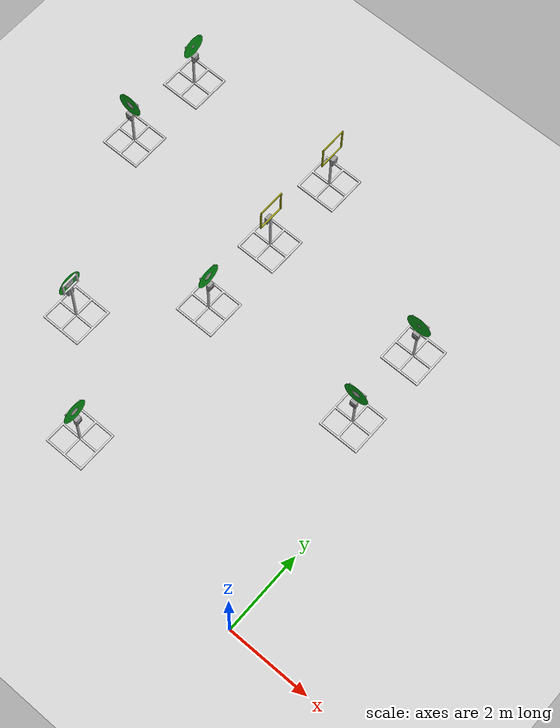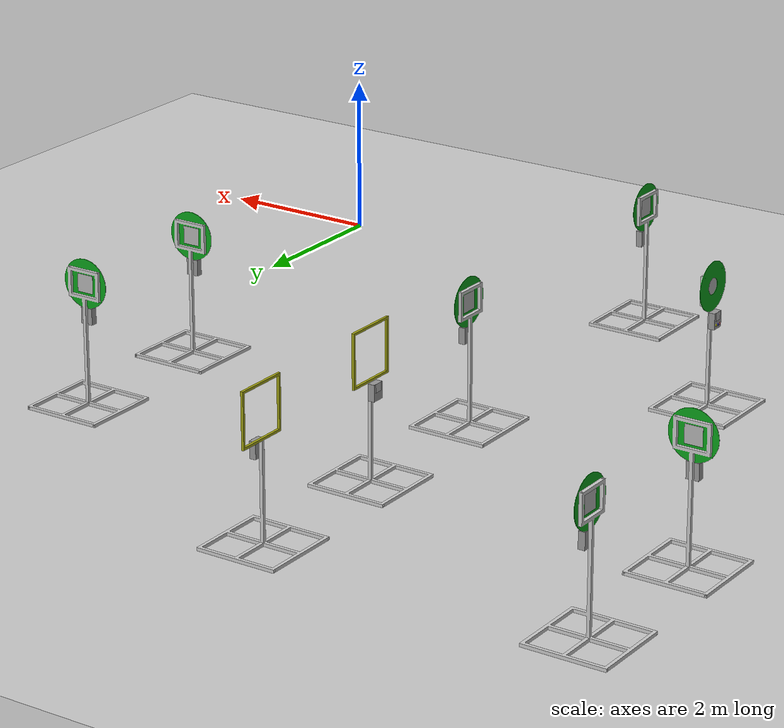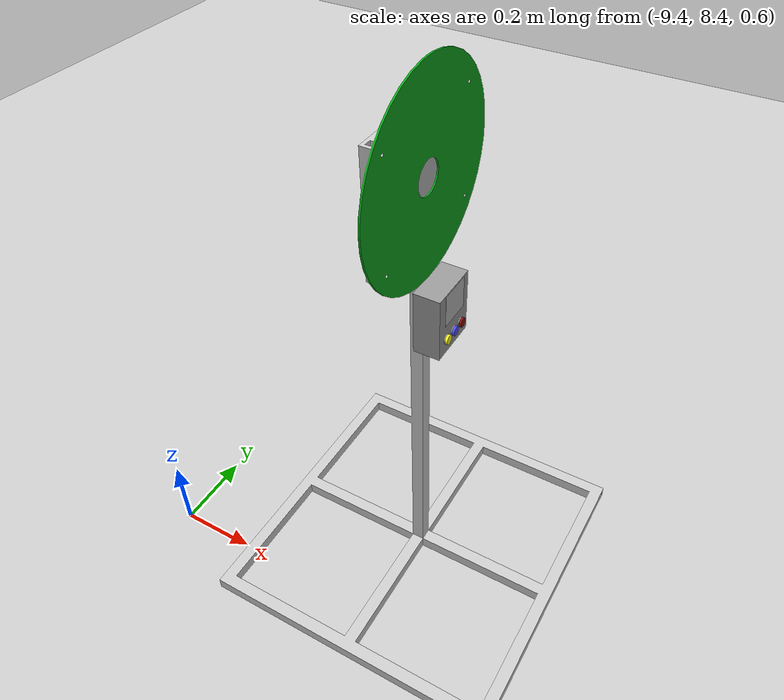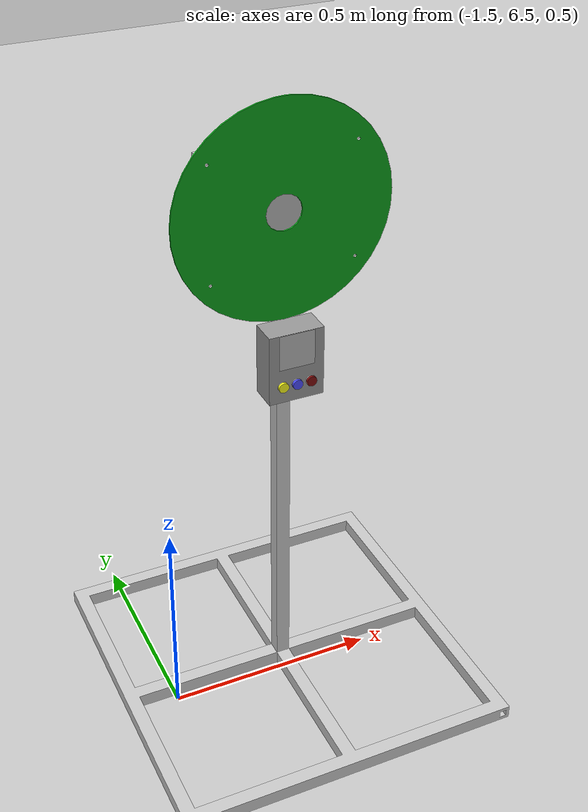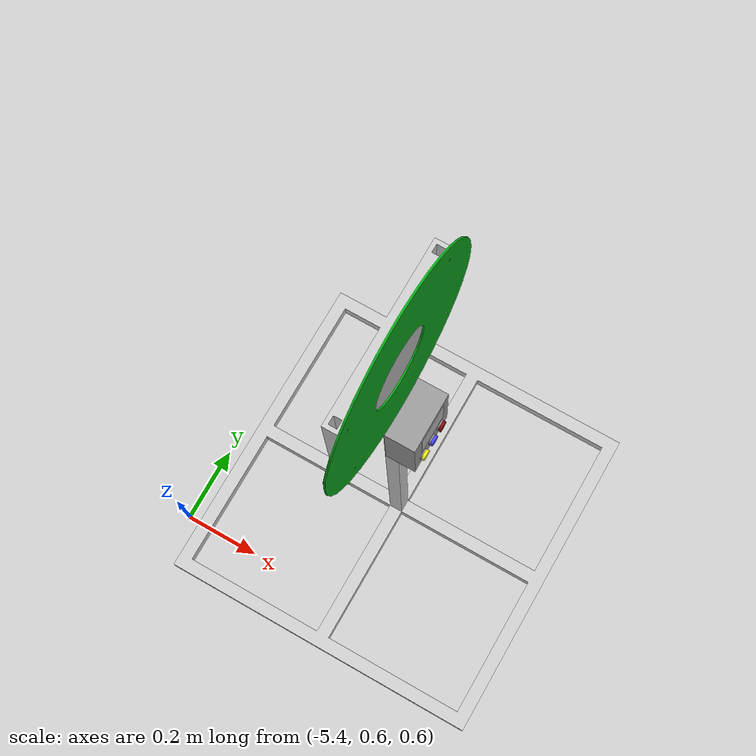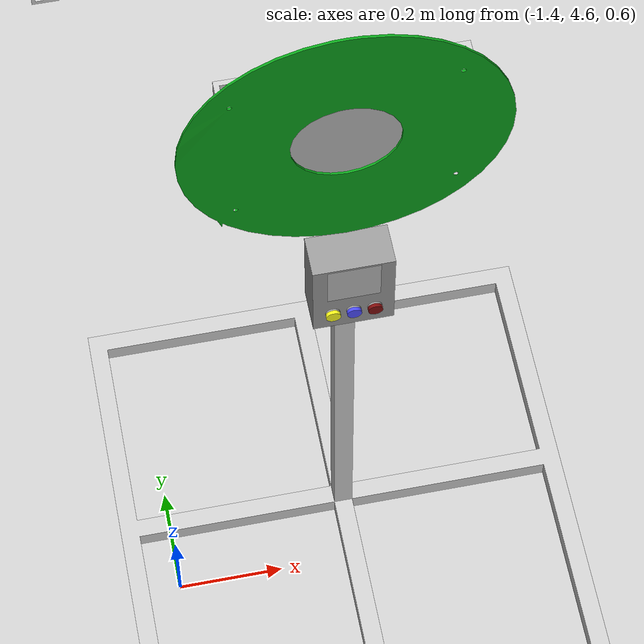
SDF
<?xml version="1.0"?>
<sdf version="1.5">
  <world name="default">
    <!-- A set of spotlights -->
    <light type="directional" name="spotlight_1">
      <pose>0 0 1000 0 0 0</pose>
      <cast_shadows>true</cast_shadows>
      <diffuse>0.65 0.65 0.65 1</diffuse>
      <specular>0.01 0.01 0.01 1</specular>
      <attenuation>
        <range>1000</range>
        <constant>0.9</constant>
        <linear>0.01</linear>
        <quadratic>0.001</quadratic>
      </attenuation>
      <direction>1 1 -0.4</direction>
    </light>
    <light type="directional" name="spotlight_2">
      <pose>0 0 1000 0 0 0</pose>
      <cast_shadows>true</cast_shadows>
      <diffuse>0.65 0.65 0.65 1</diffuse>
      <specular>0.01 0.01 0.01 1</specular>
      <attenuation>
        <range>1000</range>
        <constant>0.9</constant>
        <linear>0.01</linear>
        <quadratic>0.001</quadratic>
      </attenuation>
      <direction>-1 1 -0.4</direction>
    </light>
    <light type="directional" name="spotlight_3">
      <pose>0 0 1000 0 0 0</pose>
      <cast_shadows>true</cast_shadows>
      <diffuse>0.65 0.65 0.65 1</diffuse>
      <specular>0.01 0.01 0.01 1</specular>
      <attenuation>
        <range>1000</range>
        <constant>0.9</constant>
        <linear>0.01</linear>
        <quadratic>0.001</quadratic>
      </attenuation>
      <direction>1 -1 -0.4</direction>
    </light>
    <light type="directional" name="spotlight_4">
      <pose>0 0 1000 0 0 0</pose>
      <cast_shadows>true</cast_shadows>
      <diffuse>0.65 0.65 0.65 1</diffuse>
      <specular>0.01 0.01 0.01 1</specular>
      <attenuation>
        <range>1000</range>
        <constant>0.9</constant>
        <linear>0.01</linear>
        <quadratic>0.001</quadratic>
      </attenuation>
      <direction>-1 -1 -0.4</direction>
    </light>

    <gui>
      <camera name="user_camera">
        <pose>-8.89 -14.33 12.97 0.0 0.58 0.84</pose>
        <track_visual>
          <static>true</static>
          <use_model_frame>true</use_model_frame>
          <xyz>-3 0 1</xyz>
          <inherit_yaw>true</inherit_yaw>
        </track_visual>
      </camera>
    </gui>

    <spherical_coordinates>
      <latitude_deg>2.970668</latitude_deg>
      <longitude_deg>101.737593</longitude_deg>
    </spherical_coordinates>

    <physics type="ode">
      <real_time_update_rate>1000</real_time_update_rate>
      <max_step_size>0.001</max_step_size>
      <real_time_factor>1.0</real_time_factor>
      <max_contacts>20</max_contacts>
      <gravity>0 0 -9.81</gravity>
      <magnetic_field>0.1062e-6 20.8038e-6 -43.2881e-6</magnetic_field>
      <ode>
        <solver>
          <type>world</type>
          <min_step_size>0.0001</min_step_size>
          <iters>50</iters>
          <precon_iters>0</precon_iters>
          <sor>1.4</sor>
          <use_dynamic_moi_rescaling>1</use_dynamic_moi_rescaling>
        </solver>
        <constraints>
          <cfm>0</cfm>
          <erp>0.2</erp>
          <contact_max_correcting_vel>100.0</contact_max_correcting_vel>
          <contact_surface_layer>0.001</contact_surface_layer>
        </constraints>
      </ode>
    </physics>

    <atmosphere type="adiabatic">
      <temperature>298.15</temperature>
      <pressure>101325</pressure>
      <temperature_gradient>-0.0065</temperature_gradient>
    </atmosphere>

    <plugin name="fwman" filename="libsphinx_fwman.so">
      <spawn_point name="default">
        <pose>0 0 0.2 0 0 0</pose>
      </spawn_point>
      <spawn_point name="5_meters_forward">
        <pose>5 0 0.2 0 0 0</pose>
      </spawn_point>
    </plugin>

    <include>
      <uri>model://ground_plane</uri>
    </include>

    <!-- OBSTACLES -->
    <model name="1_big">
      <include>
        <uri>model://tc6_big_target_0</uri>
        <pose>-5 1 0 0 0 0</pose>
      </include>
    </model>

    <model name="2_big">
      <include>
        <uri>model://tc6_big_target_1</uri>
        <pose>-7 3 0 0 0 3.14</pose>
      </include>
    </model>

    <model name="3_big">
      <include>
        <uri>model://tc6_big_target_2</uri>
        <pose>-1 5 0 0 0 -1.57</pose>
      </include>
    </model>

    <model name="4_big">
      <include>
        <uri>model://tc6_big_target_3</uri>
        <pose>-5 5 0 0 0 0</pose>
      </include>
    </model>

    <model name="5_big">
      <include>
        <uri>model://tc6_big_target_0</uri>
        <pose>-9 7 0 0 0 -1.57</pose>
      </include>
    </model>

    <model name="6_ring">
      <include>
        <uri>model://tc6_ring_3</uri>
        <pose>-5 7 0 0 0 3.14</pose>
      </include>
    </model>

    <model name="7_small">
      <include>
        <uri>model://tc6_small_target_2</uri>
        <pose>-1 7 0 0 0 -1.57</pose>
      </include>
    </model>

    <model name="8_ring">
      <include>
        <uri>model://tc6_ring_3</uri>
        <pose>-5 9 0 0 0 0</pose>
      </include>
    </model>

    <model name="9_small">
      <include>
        <uri>model://tc6_small_target_2</uri>
        <pose>-9 9 0 0 0 0</pose>
      </include>
    </model>

  </world>
</sdf>

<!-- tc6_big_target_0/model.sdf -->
<sdf version="1.5">
  <model name='tc6_big_target_0'>

  <include>
    <uri>model://tc6_big_target</uri>
    <pose>0 0 0 0 0 0</pose>
  </include>

  <include>
    <uri>model://tc6_sensor_box</uri>
    <pose>0.1 0 1.0 0 0 0</pose>
  </include>

  <include>
    <uri>model://apriltag_0</uri>
    <pose>0.105 0 1.1 0 0 0</pose>
  </include>

  <include>
    <uri>model://tc6_sensor</uri>
    <pose>0.02 0 1.5 0 0 0</pose>
  </include>

  <joint name="box_joint" type="fixed">
      <child>tc6_sensor_box::box</child>
      <parent>tc6_big_target::tc6_big_target</parent>
  </joint>

  <joint name="tag_joint" type="fixed">
      <child>apriltag_0::link</child>
      <parent>tc6_sensor_box::box</parent>
  </joint>

  <joint name="sensor_joint" type="fixed">
      <child>tc6_sensor::link_pcb_copper</child>
      <parent>tc6_big_target::tc6_big_target</parent>
  </joint>

  </model>
</sdf>

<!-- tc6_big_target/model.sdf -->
<sdf version="1.5">
  <model name='tc6_big_target'>
    <link name='tc6_big_target'>
      <pose>0 0 0 1.5708 0 0</pose>
      <inertial>
        <mass>11.287</mass>
        <inertia>
          <ixx>5.72909</ixx>
          <ixy>-1.72778e-18</ixy>
          <ixz>0.0282177</ixz>
          <iyy>5.65454</iyy>
          <iyz>-2.45135e-16</iyz>
          <izz>1.65105</izz>
        </inertia>
      </inertial>
      <collision name='tc6_big_target_collision'>
        <geometry>
          <mesh>
            <scale>1 1 1</scale>
            <uri>model://tc6_big_target/meshes/tc6_big_target.dae</uri>
          </mesh>
        </geometry>
      </collision>
      <visual name='tc6_big_target_visual'>
        <geometry>
          <mesh>
            <scale>1 1 1</scale>
            <uri>model://tc6_big_target/meshes/tc6_big_target.dae</uri>
          </mesh>
        </geometry>
      </visual>
    </link>
  </model>
</sdf>

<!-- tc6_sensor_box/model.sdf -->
<sdf version='1.5'>
  <model name='tc6_sensor_box'>
    <static>true</static>
    <link name='box'>
      <pose>-0.037286 0 0.1 0 -0 0</pose>
      <visual name='visual'>
        <geometry>
          <box>
            <size>0.08 0.155 0.2</size>
          </box>
        </geometry>
        <material>
          <lighting>1</lighting>
          <script>
            <uri>file://media/materials/scripts/gazebo.material</uri>
            <name>Gazebo/Grey</name>
          </script>
          <shader type='vertex'>
            <normal_map>__default__</normal_map>
          </shader>
          <ambient>0.194 0.187 0.169 1</ambient>
          <diffuse>0.7 0.7 0.7 1</diffuse>
          <specular>0.01 0.01 0.01 1</specular>
          <emissive>0 0 0 1</emissive>
        </material>
        <transparency>0</transparency>
        <cast_shadows>1</cast_shadows>
      </visual>
      <collision name='collision'>
        <geometry>
          <box>
            <size>0.08 0.155 0.2</size>
          </box>
        </geometry>
      </collision>
    </link>
    <link name='pilot_lamp_blue'>
      <pose>0.009714 0 0.05 -3.14159 1.57 -3.14159</pose>
      <visual name='visual'>
        <geometry>
          <cylinder>
            <radius>0.014</radius>
            <length>0.007</length>
          </cylinder>
        </geometry>
        <material>
          <lighting>1</lighting>
          <script>
            <uri>file://media/materials/scripts/gazebo.material</uri>
            <name>Gazebo/Grey</name>
          </script>
          <shader type='vertex'>
            <normal_map>__default__</normal_map>
          </shader>
          <ambient>0 0 1 1</ambient>
          <diffuse>0.3 0.3 1 1</diffuse>
          <specular>0.01 0.01 0.01 1</specular>
          <emissive>0 0 0 1</emissive>
        </material>
        <transparency>0</transparency>
        <cast_shadows>1</cast_shadows>
      </visual>
      <collision name='collision'>
        <geometry>
          <cylinder>
            <radius>0.014</radius>
            <length>0.007</length>
          </cylinder>
        </geometry>
      </collision>
    </link>
    <link name='pilot_lamp_base_0'>
      <pose>0.002714 -0.04 0.05 -3.14159 1.57 -3.14159</pose>
      <visual name='visual'>
        <geometry>
          <cylinder>
            <radius>0.014</radius>
            <length>0.007</length>
          </cylinder>
        </geometry>
        <material>
          <lighting>1</lighting>
          <script>
            <uri>file://media/materials/scripts/gazebo.material</uri>
            <name>Gazebo/Grey</name>
          </script>
          <shader type='vertex'>
            <normal_map>__default__</normal_map>
          </shader>
          <ambient>0 0 0 1</ambient>
          <diffuse>0 0 0 1</diffuse>
          <specular>0 0 0 1</specular>
          <emissive>0 0 0 1</emissive>
        </material>
        <transparency>0</transparency>
        <cast_shadows>1</cast_shadows>
      </visual>
      <collision name='collision'>
        <geometry>
          <cylinder>
            <radius>0.014</radius>
            <length>0.007</length>
          </cylinder>
        </geometry>
      </collision>
    </link>
    <link name='pilot_lamp_yellow'>
      <pose>0.009714 -0.04 0.05 -3.14159 1.57 -3.14159</pose>
      <visual name='visual'>
        <geometry>
          <cylinder>
            <radius>0.014</radius>
            <length>0.007</length>
          </cylinder>
        </geometry>
        <material>
          <lighting>1</lighting>
          <script>
            <uri>file://media/materials/scripts/gazebo.material</uri>
            <name>Gazebo/Grey</name>
          </script>
          <shader type='vertex'>
            <normal_map>__default__</normal_map>
          </shader>
          <ambient>1 1 0.1 1</ambient>
          <diffuse>0.7 0.7 0.7 1</diffuse>
          <specular>0.01 0.01 0.01 1</specular>
          <emissive>0 0 0 1</emissive>
        </material>
        <transparency>0</transparency>
        <cast_shadows>1</cast_shadows>
      </visual>
      <collision name='collision'>
        <geometry>
          <cylinder>
            <radius>0.014</radius>
            <length>0.007</length>
          </cylinder>
        </geometry>
      </collision>
    </link>
    <link name='pilot_lamp_red'>
      <pose>0.009714 0.04 0.05 -3.14159 1.57 -3.14159</pose>
      <visual name='visual'>
        <geometry>
          <cylinder>
            <radius>0.014</radius>
            <length>0.007</length>
          </cylinder>
        </geometry>
        <material>
          <lighting>1</lighting>
          <script>
            <uri>file://media/materials/scripts/gazebo.material</uri>
            <name>Gazebo/Grey</name>
          </script>
          <shader type='vertex'>
            <normal_map>__default__</normal_map>
          </shader>
          <ambient>0.5 0.05 0.05 1</ambient>
          <diffuse>0.3 0.3 0.3 1</diffuse>
          <specular>0.01 0.01 0.01 1</specular>
          <emissive>0 0 0 1</emissive>
        </material>
        <transparency>0</transparency>
        <cast_shadows>1</cast_shadows>
      </visual>
      <collision name='collision'>
        <geometry>
          <cylinder>
            <radius>0.014</radius>
            <length>0.007</length>
          </cylinder>
        </geometry>
      </collision>
    </link>
    <link name='pilot_lamp_base_1'>
      <pose>0.002714 0 0.05 -3.14159 1.57 -3.14159</pose>
      <visual name='visual'>
        <geometry>
          <cylinder>
            <radius>0.014</radius>
            <length>0.007</length>
          </cylinder>
        </geometry>
        <material>
          <lighting>1</lighting>
          <script>
            <uri>file://media/materials/scripts/gazebo.material</uri>
            <name>Gazebo/Grey</name>
          </script>
          <shader type='vertex'>
            <normal_map>__default__</normal_map>
          </shader>
          <ambient>0 0 0 1</ambient>
          <diffuse>0 0 0 1</diffuse>
          <specular>0 0 0 1</specular>
          <emissive>0 0 0 1</emissive>
        </material>
        <transparency>0</transparency>
        <cast_shadows>1</cast_shadows>
      </visual>
      <collision name='collision'>
        <geometry>
          <cylinder>
            <radius>0.014</radius>
            <length>0.007</length>
          </cylinder>
        </geometry>
      </collision>
    </link>
    <link name='pilot_lamp_base_2'>
      <pose>0.002714 0.04 0.05 -3.14159 1.57 -3.14159</pose>
      <visual name='visual'>
        <pose>0 0 0 0 -0 0</pose>
        <geometry>
          <cylinder>
            <radius>0.014</radius>
            <length>0.007</length>
          </cylinder>
        </geometry>
        <material>
          <lighting>1</lighting>
          <script>
            <uri>file://media/materials/scripts/gazebo.material</uri>
            <name>Gazebo/Grey</name>
          </script>
          <shader type='vertex'>
            <normal_map>__default__</normal_map>
          </shader>
          <ambient>0 0 0 1</ambient>
          <diffuse>0 0 0 1</diffuse>
          <specular>0 0 0 1</specular>
          <emissive>0 0 0 1</emissive>
        </material>
        <transparency>0</transparency>
        <cast_shadows>1</cast_shadows>
      </visual>
      <collision name='collision'>
        <geometry>
          <cylinder>
            <radius>0.014</radius>
            <length>0.007</length>
          </cylinder>
        </geometry>
      </collision>
    </link>
    <static>0</static>
    <allow_auto_disable>1</allow_auto_disable>

    <joint name="lamp_base_0_joint" type="fixed">
      <child>pilot_lamp_base_0</child>
      <parent>box</parent>
    </joint>
    <joint name="lamp_yellow_joint" type="fixed">
      <child>pilot_lamp_yellow</child>
      <parent>pilot_lamp_base_0</parent>
    </joint>
    <joint name="lamp_base_1_joint" type="fixed">
      <child>pilot_lamp_base_1</child>
      <parent>box</parent>
    </joint>
    <joint name="lamp_blue_joint" type="fixed">
      <child>pilot_lamp_blue</child>
      <parent>pilot_lamp_base_1</parent>
    </joint>
    <joint name="lamp_base_2_joint" type="fixed">
      <child>pilot_lamp_base_2</child>
      <parent>box</parent>
    </joint>
    <joint name="lamp_red_joint" type="fixed">
      <child>pilot_lamp_red</child>
      <parent>pilot_lamp_base_2</parent>
    </joint>
  </model>
</sdf>

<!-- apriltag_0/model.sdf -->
<sdf version="1.5">
  <model name="apriltag_0">
    <static>true</static>
    <link name="link">
      <pose>0 0 0.05 0 0 0</pose>
      <collision name="collision">
        <geometry>
          <box>
            <size>0.001 0.1 0.1</size>
          </box>
        </geometry>
      </collision>
      <visual name="visual">
        <geometry>
          <box>
            <size>0.001 0.1 0.1</size>
          </box>
        </geometry>
        <material>
          <script>
            <uri>model://apriltag_0/materials/scripts</uri>
            <uri>model://apriltag_0/materials/textures</uri>
            <name>apriltag_0/Diffuse</name>
          </script>
        </material>
      </visual>
    </link>
  </model>
</sdf>

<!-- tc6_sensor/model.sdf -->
<sdf version="1.5">
  <model name="tc6_sensor">
    <static>true</static>
    <link name="link_pcb_top">
      <pose>-0.001 0 0 0 0 0</pose>

      <collision name="collision">
        <geometry>
          <box>
            <size>0.001 0.22 0.22</size>
          </box>
        </geometry>
      </collision>
      <visual name="visual">
        <geometry>
          <box>
            <size>0.001 0.22 0.22</size>
          </box>
        </geometry>
        <material>
          <script>
            <uri>model://tc6_sensor/materials/scripts</uri>
            <uri>model://tc6_sensor/materials/textures</uri>
            <name>tc6_sensor_top/Diffuse</name>
          </script>
        </material>
      </visual>
    </link>
    <link name="link_pcb_copper">
      <pose>0 0 0 0 0 0</pose>

      <collision name="collision">
        <geometry>
          <box>
            <size>0.001 0.22 0.22</size>
          </box>
        </geometry>
      </collision>
      <visual name="visual">
        <geometry>
          <box>
            <size>0.001 0.22 0.22</size>
          </box>
        </geometry>
        <material>
          <script>
            <uri>model://tc6_sensor/materials/scripts</uri>
            <uri>model://tc6_sensor/materials/textures</uri>
            <name>tc6_sensor_copper/Diffuse</name>
          </script>
        </material>
      </visual>
    </link>
  </model>
</sdf>

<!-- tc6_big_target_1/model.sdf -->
<sdf version="1.5">
  <model name='tc6_big_target_1'>

  <include>
    <uri>model://tc6_big_target</uri>
    <pose>0 0 0 0 0 0</pose>
  </include>

  <include>
    <uri>model://tc6_sensor_box</uri>
    <pose>0.1 0 1.0 0 0 0</pose>
  </include>

  <include>
    <uri>model://apriltag_1</uri>
    <pose>0.105 0 1.1 0 0 0</pose>
  </include>

  <include>
    <uri>model://tc6_sensor</uri>
    <pose>0.02 0 1.5 0 0 0</pose>
  </include>

  <joint name="box_joint" type="fixed">
      <child>tc6_sensor_box::box</child>
      <parent>tc6_big_target::tc6_big_target</parent>
  </joint>

  <joint name="tag_joint" type="fixed">
      <child>apriltag_1::link</child>
      <parent>tc6_sensor_box::box</parent>
  </joint>

  <joint name="sensor_joint" type="fixed">
      <child>tc6_sensor::link_pcb_copper</child>
      <parent>tc6_big_target::tc6_big_target</parent>
  </joint>

  </model>
</sdf>

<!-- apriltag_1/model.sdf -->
<sdf version="1.5">
  <model name="apriltag_1">
    <static>true</static>
    <link name="link">
      <pose>0 0 0.05 0 0 0</pose>
      <collision name="collision">
        <geometry>
          <box>
            <size>0.001 0.1 0.1</size>
          </box>
        </geometry>
      </collision>
      <visual name="visual">
        <geometry>
          <box>
            <size>0.001 0.1 0.1</size>
          </box>
        </geometry>
        <material>
          <script>
            <uri>model://apriltag_1/materials/scripts</uri>
            <uri>model://apriltag_1/materials/textures</uri>
            <name>apriltag_1/Diffuse</name>
          </script>
        </material>
      </visual>
    </link>
  </model>
</sdf>

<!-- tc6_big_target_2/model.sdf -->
<sdf version="1.5">
  <model name='tc6_big_target_2'>

  <include>
    <uri>model://tc6_big_target</uri>
    <pose>0 0 0 0 0 0</pose>
  </include>

  <include>
    <uri>model://tc6_sensor_box</uri>
    <pose>0.1 0 1.0 0 0 0</pose>
  </include>

  <include>
    <uri>model://apriltag_2</uri>
    <pose>0.105 0 1.1 0 0 0</pose>
  </include>

  <include>
    <uri>model://tc6_sensor</uri>
    <pose>0.02 0 1.5 0 0 0</pose>
  </include>

  <joint name="box_joint" type="fixed">
      <child>tc6_sensor_box::box</child>
      <parent>tc6_big_target::tc6_big_target</parent>
  </joint>

  <joint name="tag_joint" type="fixed">
      <child>apriltag_2::link</child>
      <parent>tc6_sensor_box::box</parent>
  </joint>

  <joint name="sensor_joint" type="fixed">
      <child>tc6_sensor::link_pcb_copper</child>
      <parent>tc6_big_target::tc6_big_target</parent>
  </joint>

  </model>
</sdf>

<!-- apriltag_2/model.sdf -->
<sdf version="1.5">
  <model name="apriltag_2">
    <static>true</static>
    <link name="link">
      <pose>0 0 0.05 0 0 0</pose>
      <collision name="collision">
        <geometry>
          <box>
            <size>0.001 0.1 0.1</size>
          </box>
        </geometry>
      </collision>
      <visual name="visual">
        <geometry>
          <box>
            <size>0.001 0.1 0.1</size>
          </box>
        </geometry>
        <material>
          <script>
            <uri>model://apriltag_2/materials/scripts</uri>
            <uri>model://apriltag_2/materials/textures</uri>
            <name>apriltag_2/Diffuse</name>
          </script>
        </material>
      </visual>
    </link>
  </model>
</sdf>

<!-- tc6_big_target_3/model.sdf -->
<sdf version="1.5">
  <model name='tc6_big_target_3'>

  <include>
    <uri>model://tc6_big_target</uri>
    <pose>0 0 0 0 0 0</pose>
  </include>

  <include>
    <uri>model://tc6_sensor_box</uri>
    <pose>0.1 0 1.0 0 0 0</pose>
  </include>

  <include>
    <uri>model://apriltag_3</uri>
    <pose>0.105 0 1.1 0 0 0</pose>
  </include>

  <include>
    <uri>model://tc6_sensor</uri>
    <pose>0.02 0 1.5 0 0 0</pose>
  </include>

  <joint name="box_joint" type="fixed">
      <child>tc6_sensor_box::box</child>
      <parent>tc6_big_target::tc6_big_target</parent>
  </joint>

  <joint name="tag_joint" type="fixed">
      <child>apriltag_3::link</child>
      <parent>tc6_sensor_box::box</parent>
  </joint>

  <joint name="sensor_joint" type="fixed">
      <child>tc6_sensor::link_pcb_copper</child>
      <parent>tc6_big_target::tc6_big_target</parent>
  </joint>

  </model>
</sdf>

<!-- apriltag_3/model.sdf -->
<sdf version="1.5">
  <model name="apriltag_3">
    <static>true</static>
    <link name="link">
      <pose>0 0 0.05 0 0 0</pose>
      <collision name="collision">
        <geometry>
          <box>
            <size>0.001 0.1 0.1</size>
          </box>
        </geometry>
      </collision>
      <visual name="visual">
        <geometry>
          <box>
            <size>0.001 0.1 0.1</size>
          </box>
        </geometry>
        <material>
          <script>
            <uri>model://apriltag_3/materials/scripts</uri>
            <uri>model://apriltag_3/materials/textures</uri>
            <name>apriltag_3/Diffuse</name>
          </script>
        </material>
      </visual>
    </link>
  </model>
</sdf>

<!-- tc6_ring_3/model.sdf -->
<sdf version="1.5">
  <model name='tc6_ring_3'>

  <include>
    <uri>model://tc6_ring</uri>
    <pose>0 0 0 0 0 0</pose>
  </include>

  <include>
    <uri>model://tc6_box</uri>
    <pose>0.1 0 1.0 0 0 0</pose>
  </include>

  <include>
    <uri>model://apriltag_3</uri>
    <pose>0.105 0 1.1 0 0 0</pose>
  </include>

  <joint name="box_joint" type="fixed">
      <child>tc6_box::box</child>
      <parent>tc6_ring::tc6_ring</parent>
  </joint>

  <joint name="tag_joint" type="fixed">
      <child>apriltag_3::link</child>
      <parent>tc6_box::box</parent>
  </joint>

  </model>
</sdf>

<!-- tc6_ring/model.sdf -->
<sdf version="1.5">
  <model name='tc6_ring'>
    <link name='tc6_ring'>
      <pose>0 0 0 1.5708 -0 0</pose>
      <inertial>
        <mass>10.176</mass>
        <inertia>
          <ixx>4.83082</ixx>
          <ixy>-2.29503e-18</ixy>
          <ixz>5.55112e-17</ixz>
          <iyy>4.69731</iyy>
          <iyz>-1.62639e-16</iyz>
          <izz>1.70858</izz>
        </inertia>
      </inertial>
      <collision name='tc6_ring_collision'>
        <geometry>
          <mesh>
            <scale>1 1 1</scale>
            <uri>model://tc6_ring/meshes/tc6_ring.dae</uri>
          </mesh>
        </geometry>
      </collision>
      <visual name='tc6_ring_visual'>
        <geometry>
          <mesh>
            <scale>1 1 1</scale>
            <uri>model://tc6_ring/meshes/tc6_ring.dae</uri>
          </mesh>
        </geometry>
      </visual>
    </link>
  </model>
</sdf>

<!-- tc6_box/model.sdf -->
<sdf version='1.5'>
  <model name='tc6_box'>
    <static>true</static>
    <link name='box'>
      <pose>-0.037286 0 0.1 0 -0 0</pose>
      <visual name='visual'>
        <geometry>
          <box>
            <size>0.08 0.155 0.2</size>
          </box>
        </geometry>
        <material>
          <lighting>1</lighting>
          <script>
            <uri>file://media/materials/scripts/gazebo.material</uri>
            <name>Gazebo/Grey</name>
          </script>
          <shader type='vertex'>
            <normal_map>__default__</normal_map>
          </shader>
          <ambient>0.194 0.187 0.169 1</ambient>
          <diffuse>0.7 0.7 0.7 1</diffuse>
          <specular>0.01 0.01 0.01 1</specular>
          <emissive>0 0 0 1</emissive>
        </material>
        <transparency>0</transparency>
        <cast_shadows>1</cast_shadows>
      </visual>
      <collision name='collision'>
        <geometry>
          <box>
            <size>0.08 0.155 0.2</size>
          </box>
        </geometry>
      </collision>
    </link>

    <static>0</static>
    <allow_auto_disable>1</allow_auto_disable>

  </model>
</sdf>

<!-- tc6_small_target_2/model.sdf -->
<sdf version="1.5">
  <model name='tc6_small_target_2'>

  <include>
    <uri>model://tc6_small_target</uri>
    <pose>0 0 0 0 0 0</pose>
  </include>

  <include>
    <uri>model://tc6_sensor_box</uri>
    <pose>0.1 0 1.0 0 0 0</pose>
  </include>

  <include>
    <uri>model://apriltag_2</uri>
    <pose>0.105 0 1.1 0 0 0</pose>
  </include>

  <include>
    <uri>model://tc6_sensor</uri>
    <pose>0.02 0 1.5 0 0 0</pose>
  </include>

  <joint name="box_joint" type="fixed">
      <child>tc6_sensor_box::box</child>
      <parent>tc6_small_target::tc6_small_target</parent>
  </joint>

  <joint name="tag_joint" type="fixed">
      <child>apriltag_2::link</child>
      <parent>tc6_sensor_box::box</parent>
  </joint>

  <joint name="sensor_joint" type="fixed">
      <child>tc6_sensor::link_pcb_copper</child>
      <parent>tc6_small_target::tc6_small_target</parent>
  </joint>

  </model>
</sdf>

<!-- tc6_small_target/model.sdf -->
<sdf version="1.5">
  <model name='tc6_small_target'>
    <link name='tc6_small_target'>
      <pose>0 0 0 1.5708 0 0</pose>
      <inertial>
        <mass>11.405</mass>
        <inertia>
          <ixx>5.84618</ixx>
          <ixy>-1.97357e-18</ixy>
          <ixz>0.0305469</ixz>
          <iyy>5.77131</iyy>
          <iyz>-1.85975e-16</iyz>
          <izz>1.65146</izz>
        </inertia>
      </inertial>
      <collision name='tc6_small_target_collision'>
        <geometry>
          <mesh>
            <scale>1 1 1</scale>
            <uri>model://tc6_small_target/meshes/tc6_small_target.dae</uri>
          </mesh>
        </geometry>
      </collision>
      <visual name='tc6_small_target_visual'>
        <geometry>
          <mesh>
            <scale>1 1 1</scale>
            <uri>model://tc6_small_target/meshes/tc6_small_target.dae</uri>
          </mesh>
        </geometry>
      </visual>
    </link>
  </model>
</sdf>
